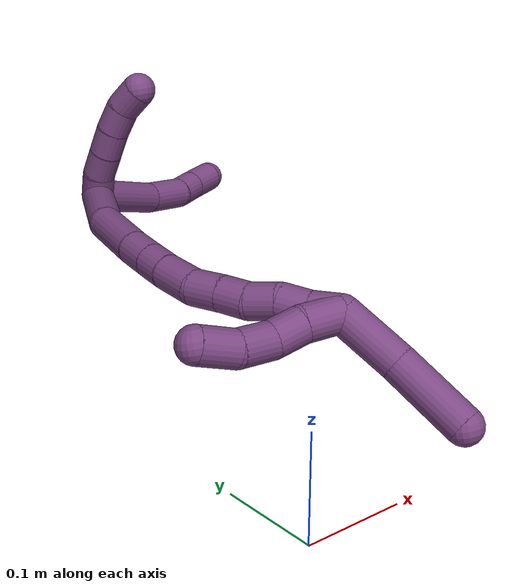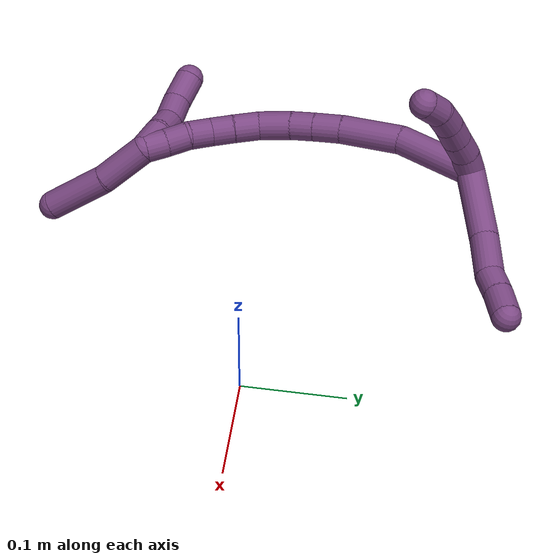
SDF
<sdf version="1.7">
 <world name="default">
  <model name="20">
   <static>0</static>
   <link name="20">
    <collision name="collision-cylinder-e_1_2_8">
     <pose>0.029649 0.01121 -0.006122 -2.07066 1.16403 -1.67422</pose>
     <geometry><cylinder><radius>0.0125</radius><length>0.064565</length></cylinder></geometry>
     <surface>
      <friction><ode><mu>1.16</mu><mu2>1.16</mu2><slip1>0</slip1><slip2>0</slip2></ode></friction>
      <contact><ode><kp>1e+06</kp><kd>1</kd><max_vel>0</max_vel><min_depth>0.001</min_depth></ode></contact>
     </surface>
    </collision>
    <visual name="visual-cylinder-e_1_2_8">
     <pose>0.029649 0.01121 -0.006122 -2.07066 1.16403 -1.67422</pose>
     <geometry><cylinder><radius>0.0125</radius><length>0.064565</length></cylinder></geometry>
     <material><ambient>0.478431 0.278431 0.509804 1</ambient></material>
    </visual>
    <collision name="collision-cylinder-e_2_8_9">
     <pose>0.077537 0.026969 -0.013356 -1.8106 1.31947 -1.55892</pose>
     <geometry><cylinder><radius>0.0125</radius><length>0.037663</length></cylinder></geometry>
     <surface>
      <friction><ode><mu>1.16</mu><mu2>1.16</mu2><slip1>0</slip1><slip2>0</slip2></ode></friction>
      <contact><ode><kp>1e+06</kp><kd>1</kd><max_vel>0</max_vel><min_depth>0.001</min_depth></ode></contact>
     </surface>
    </collision>
    <visual name="visual-cylinder-e_2_8_9">
     <pose>0.077537 0.026969 -0.013356 -1.8106 1.31947 -1.55892</pose>
     <geometry><cylinder><radius>0.0125</radius><length>0.037663</length></cylinder></geometry>
     <material><ambient>0.478431 0.278431 0.509804 1</ambient></material>
    </visual>
    <collision name="collision-cylinder-e_3_9_10">
     <pose>0.105566 0.035551 -0.012881 -1.19581 1.15398 -0.834515</pose>
     <geometry><cylinder><radius>0.0125</radius><length>0.021412</length></cylinder></geometry>
     <surface>
      <friction><ode><mu>1.16</mu><mu2>1.16</mu2><slip1>0</slip1><slip2>0</slip2></ode></friction>
      <contact><ode><kp>1e+06</kp><kd>1</kd><max_vel>0</max_vel><min_depth>0.001</min_depth></ode></contact>
     </surface>
    </collision>
    <visual name="visual-cylinder-e_3_9_10">
     <pose>0.105566 0.035551 -0.012881 -1.19581 1.15398 -0.834515</pose>
     <geometry><cylinder><radius>0.0125</radius><length>0.021412</length></cylinder></geometry>
     <material><ambient>0.478431 0.278431 0.509804 1</ambient></material>
    </visual>
    <collision name="collision-cylinder-e_4_10_6">
     <pose>0.127807 0.043403 -0.009271 -1.08375 1.23672 -0.809276</pose>
     <geometry><cylinder><radius>0.0125</radius><length>0.02636</length></cylinder></geometry>
     <surface>
      <friction><ode><mu>1.16</mu><mu2>1.16</mu2><slip1>0</slip1><slip2>0</slip2></ode></friction>
      <contact><ode><kp>1e+06</kp><kd>1</kd><max_vel>0</max_vel><min_depth>0.001</min_depth></ode></contact>
     </surface>
    </collision>
    <visual name="visual-cylinder-e_4_10_6">
     <pose>0.127807 0.043403 -0.009271 -1.08375 1.23672 -0.809276</pose>
     <geometry><cylinder><radius>0.0125</radius><length>0.02636</length></cylinder></geometry>
     <material><ambient>0.478431 0.278431 0.509804 1</ambient></material>
    </visual>
    <collision name="collision-cylinder-e_1_2_11">
     <pose>-0.000419 -0.00534 0.008445 0.563867 -0.041906 -0.01214</pose>
     <geometry><cylinder><radius>0.0125</radius><length>0.02</length></cylinder></geometry>
     <surface>
      <friction><ode><mu>1.16</mu><mu2>1.16</mu2><slip1>0</slip1><slip2>0</slip2></ode></friction>
      <contact><ode><kp>1e+06</kp><kd>1</kd><max_vel>0</max_vel><min_depth>0.001</min_depth></ode></contact>
     </surface>
    </collision>
    <visual name="visual-cylinder-e_1_2_11">
     <pose>-0.000419 -0.00534 0.008445 0.563867 -0.041906 -0.01214</pose>
     <geometry><cylinder><radius>0.0125</radius><length>0.02</length></cylinder></geometry>
     <material><ambient>0.478431 0.278431 0.509804 1</ambient></material>
    </visual>
    <collision name="collision-cylinder-e_2_11_12">
     <pose>0.000496 -0.016866 0.024632 0.67408 0.133804 0.046948</pose>
     <geometry><cylinder><radius>0.0125</radius><length>0.02</length></cylinder></geometry>
     <surface>
      <friction><ode><mu>1.16</mu><mu2>1.16</mu2><slip1>0</slip1><slip2>0</slip2></ode></friction>
      <contact><ode><kp>1e+06</kp><kd>1</kd><max_vel>0</max_vel><min_depth>0.001</min_depth></ode></contact>
     </surface>
    </collision>
    <visual name="visual-cylinder-e_2_11_12">
     <pose>0.000496 -0.016866 0.024632 0.67408 0.133804 0.046948</pose>
     <geometry><cylinder><radius>0.0125</radius><length>0.02</length></cylinder></geometry>
     <material><ambient>0.478431 0.278431 0.509804 1</ambient></material>
    </visual>
    <collision name="collision-cylinder-e_3_12_13">
     <pose>0.003519 -0.028912 0.0403 0.63678 0.169697 0.056053</pose>
     <geometry><cylinder><radius>0.0125</radius><length>0.02</length></cylinder></geometry>
     <surface>
      <friction><ode><mu>1.16</mu><mu2>1.16</mu2><slip1>0</slip1><slip2>0</slip2></ode></friction>
      <contact><ode><kp>1e+06</kp><kd>1</kd><max_vel>0</max_vel><min_depth>0.001</min_depth></ode></contact>
     </surface>
    </collision>
    <visual name="visual-cylinder-e_3_12_13">
     <pose>0.003519 -0.028912 0.0403 0.63678 0.169697 0.056053</pose>
     <geometry><cylinder><radius>0.0125</radius><length>0.02</length></cylinder></geometry>
     <material><ambient>0.478431 0.278431 0.509804 1</ambient></material>
    </visual>
    <collision name="collision-cylinder-e_4_13_14">
     <pose>0.007729 -0.04089 0.055723 0.684206 0.254822 0.091175</pose>
     <geometry><cylinder><radius>0.0125</radius><length>0.02</length></cylinder></geometry>
     <surface>
      <friction><ode><mu>1.16</mu><mu2>1.16</mu2><slip1>0</slip1><slip2>0</slip2></ode></friction>
      <contact><ode><kp>1e+06</kp><kd>1</kd><max_vel>0</max_vel><min_depth>0.001</min_depth></ode></contact>
     </surface>
    </collision>
    <visual name="visual-cylinder-e_4_13_14">
     <pose>0.007729 -0.04089 0.055723 0.684206 0.254822 0.091175</pose>
     <geometry><cylinder><radius>0.0125</radius><length>0.02</length></cylinder></geometry>
     <material><ambient>0.478431 0.278431 0.509804 1</ambient></material>
    </visual>
    <collision name="collision-cylinder-e_5_14_5">
     <pose>0.013818 -0.054665 0.068572 0.961098 0.364873 0.19176</pose>
     <geometry><cylinder><radius>0.0125</radius><length>0.02</length></cylinder></geometry>
     <surface>
      <friction><ode><mu>1.16</mu><mu2>1.16</mu2><slip1>0</slip1><slip2>0</slip2></ode></friction>
      <contact><ode><kp>1e+06</kp><kd>1</kd><max_vel>0</max_vel><min_depth>0.001</min_depth></ode></contact>
     </surface>
    </collision>
    <visual name="visual-cylinder-e_5_14_5">
     <pose>0.013818 -0.054665 0.068572 0.961098 0.364873 0.19176</pose>
     <geometry><cylinder><radius>0.0125</radius><length>0.02</length></cylinder></geometry>
     <material><ambient>0.478431 0.278431 0.509804 1</ambient></material>
    </visual>
    <collision name="collision-cylinder-e_1_2_15">
     <pose>-0.01511 -0.029922 -0.008641 1.85194 -0.451703 -0.593023</pose>
     <geometry><cylinder><radius>0.0125</radius><length>0.069234</length></cylinder></geometry>
     <surface>
      <friction><ode><mu>1.16</mu><mu2>1.16</mu2><slip1>0</slip1><slip2>0</slip2></ode></friction>
      <contact><ode><kp>1e+06</kp><kd>1</kd><max_vel>0</max_vel><min_depth>0.001</min_depth></ode></contact>
     </surface>
    </collision>
    <visual name="visual-cylinder-e_1_2_15">
     <pose>-0.01511 -0.029922 -0.008641 1.85194 -0.451703 -0.593023</pose>
     <geometry><cylinder><radius>0.0125</radius><length>0.069234</length></cylinder></geometry>
     <material><ambient>0.478431 0.278431 0.509804 1</ambient></material>
    </visual>
    <collision name="collision-cylinder-e_2_15_16">
     <pose>-0.034672 -0.084764 -0.025783 1.89953 -0.167476 -0.23356</pose>
     <geometry><cylinder><radius>0.0125</radius><length>0.053407</length></cylinder></geometry>
     <surface>
      <friction><ode><mu>1.16</mu><mu2>1.16</mu2><slip1>0</slip1><slip2>0</slip2></ode></friction>
      <contact><ode><kp>1e+06</kp><kd>1</kd><max_vel>0</max_vel><min_depth>0.001</min_depth></ode></contact>
     </surface>
    </collision>
    <visual name="visual-cylinder-e_2_15_16">
     <pose>-0.034672 -0.084764 -0.025783 1.89953 -0.167476 -0.23356</pose>
     <geometry><cylinder><radius>0.0125</radius><length>0.053407</length></cylinder></geometry>
     <material><ambient>0.478431 0.278431 0.509804 1</ambient></material>
    </visual>
    <collision name="collision-cylinder-e_3_16_17">
     <pose>-0.040003 -0.121099 -0.038556 1.92899 -0.072102 -0.10393</pose>
     <geometry><cylinder><radius>0.0125</radius><length>0.02444</length></cylinder></geometry>
     <surface>
      <friction><ode><mu>1.16</mu><mu2>1.16</mu2><slip1>0</slip1><slip2>0</slip2></ode></friction>
      <contact><ode><kp>1e+06</kp><kd>1</kd><max_vel>0</max_vel><min_depth>0.001</min_depth></ode></contact>
     </surface>
    </collision>
    <visual name="visual-cylinder-e_3_16_17">
     <pose>-0.040003 -0.121099 -0.038556 1.92899 -0.072102 -0.10393</pose>
     <geometry><cylinder><radius>0.0125</radius><length>0.02444</length></cylinder></geometry>
     <material><ambient>0.478431 0.278431 0.509804 1</ambient></material>
    </visual>
    <collision name="collision-cylinder-e_4_17_18">
     <pose>-0.041347 -0.142066 -0.046447 1.93277 -0.04537 -0.065681</pose>
     <geometry><cylinder><radius>0.0125</radius><length>0.020451</length></cylinder></geometry>
     <surface>
      <friction><ode><mu>1.16</mu><mu2>1.16</mu2><slip1>0</slip1><slip2>0</slip2></ode></friction>
      <contact><ode><kp>1e+06</kp><kd>1</kd><max_vel>0</max_vel><min_depth>0.001</min_depth></ode></contact>
     </surface>
    </collision>
    <visual name="visual-cylinder-e_4_17_18">
     <pose>-0.041347 -0.142066 -0.046447 1.93277 -0.04537 -0.065681</pose>
     <geometry><cylinder><radius>0.0125</radius><length>0.020451</length></cylinder></geometry>
     <material><ambient>0.478431 0.278431 0.509804 1</ambient></material>
    </visual>
    <collision name="collision-cylinder-e_5_18_19">
     <pose>-0.041026 -0.164802 -0.0551 1.93568 0.055613 0.080752</pose>
     <geometry><cylinder><radius>0.0125</radius><length>0.028268</length></cylinder></geometry>
     <surface>
      <friction><ode><mu>1.16</mu><mu2>1.16</mu2><slip1>0</slip1><slip2>0</slip2></ode></friction>
      <contact><ode><kp>1e+06</kp><kd>1</kd><max_vel>0</max_vel><min_depth>0.001</min_depth></ode></contact>
     </surface>
    </collision>
    <visual name="visual-cylinder-e_5_18_19">
     <pose>-0.041026 -0.164802 -0.0551 1.93568 0.055613 0.080752</pose>
     <geometry><cylinder><radius>0.0125</radius><length>0.028268</length></cylinder></geometry>
     <material><ambient>0.478431 0.278431 0.509804 1</ambient></material>
    </visual>
    <collision name="collision-cylinder-e_6_19_20">
     <pose>-0.036496 -0.188366 -0.06286 1.82752 0.335652 0.432404</pose>
     <geometry><cylinder><radius>0.0125</radius><length>0.022732</length></cylinder></geometry>
     <surface>
      <friction><ode><mu>1.16</mu><mu2>1.16</mu2><slip1>0</slip1><slip2>0</slip2></ode></friction>
      <contact><ode><kp>1e+06</kp><kd>1</kd><max_vel>0</max_vel><min_depth>0.001</min_depth></ode></contact>
     </surface>
    </collision>
    <visual name="visual-cylinder-e_6_19_20">
     <pose>-0.036496 -0.188366 -0.06286 1.82752 0.335652 0.432404</pose>
     <geometry><cylinder><radius>0.0125</radius><length>0.022732</length></cylinder></geometry>
     <material><ambient>0.478431 0.278431 0.509804 1</ambient></material>
    </visual>
    <collision name="collision-cylinder-e_7_20_21">
     <pose>-0.029633 -0.207944 -0.068465 1.87416 0.312965 0.422996</pose>
     <geometry><cylinder><radius>0.0125</radius><length>0.020261</length></cylinder></geometry>
     <surface>
      <friction><ode><mu>1.16</mu><mu2>1.16</mu2><slip1>0</slip1><slip2>0</slip2></ode></friction>
      <contact><ode><kp>1e+06</kp><kd>1</kd><max_vel>0</max_vel><min_depth>0.001</min_depth></ode></contact>
     </surface>
    </collision>
    <visual name="visual-cylinder-e_7_20_21">
     <pose>-0.029633 -0.207944 -0.068465 1.87416 0.312965 0.422996</pose>
     <geometry><cylinder><radius>0.0125</radius><length>0.020261</length></cylinder></geometry>
     <material><ambient>0.478431 0.278431 0.509804 1</ambient></material>
    </visual>
    <collision name="collision-cylinder-e_8_21_22">
     <pose>-0.021337 -0.226159 -0.072278 1.674 0.518929 0.572548</pose>
     <geometry><cylinder><radius>0.0125</radius><length>0.02088</length></cylinder></geometry>
     <surface>
      <friction><ode><mu>1.16</mu><mu2>1.16</mu2><slip1>0</slip1><slip2>0</slip2></ode></friction>
      <contact><ode><kp>1e+06</kp><kd>1</kd><max_vel>0</max_vel><min_depth>0.001</min_depth></ode></contact>
     </surface>
    </collision>
    <visual name="visual-cylinder-e_8_21_22">
     <pose>-0.021337 -0.226159 -0.072278 1.674 0.518929 0.572548</pose>
     <geometry><cylinder><radius>0.0125</radius><length>0.02088</length></cylinder></geometry>
     <material><ambient>0.478431 0.278431 0.509804 1</ambient></material>
    </visual>
    <collision name="collision-cylinder-e_9_22_23">
     <pose>-0.011564 -0.243442 -0.076727 1.97288 0.472859 0.698667</pose>
     <geometry><cylinder><radius>0.0125</radius><length>0.020178</length></cylinder></geometry>
     <surface>
      <friction><ode><mu>1.16</mu><mu2>1.16</mu2><slip1>0</slip1><slip2>0</slip2></ode></friction>
      <contact><ode><kp>1e+06</kp><kd>1</kd><max_vel>0</max_vel><min_depth>0.001</min_depth></ode></contact>
     </surface>
    </collision>
    <visual name="visual-cylinder-e_9_22_23">
     <pose>-0.011564 -0.243442 -0.076727 1.97288 0.472859 0.698667</pose>
     <geometry><cylinder><radius>0.0125</radius><length>0.020178</length></cylinder></geometry>
     <material><ambient>0.478431 0.278431 0.509804 1</ambient></material>
    </visual>
    <collision name="collision-cylinder-e_10_23_1">
     <pose>-0.001685 -0.260035 -0.082301 1.81323 0.552162 0.694499</pose>
     <geometry><cylinder><radius>0.0125</radius><length>0.020149</length></cylinder></geometry>
     <surface>
      <friction><ode><mu>1.16</mu><mu2>1.16</mu2><slip1>0</slip1><slip2>0</slip2></ode></friction>
      <contact><ode><kp>1e+06</kp><kd>1</kd><max_vel>0</max_vel><min_depth>0.001</min_depth></ode></contact>
     </surface>
    </collision>
    <visual name="visual-cylinder-e_10_23_1">
     <pose>-0.001685 -0.260035 -0.082301 1.81323 0.552162 0.694499</pose>
     <geometry><cylinder><radius>0.0125</radius><length>0.020149</length></cylinder></geometry>
     <material><ambient>0.478431 0.278431 0.509804 1</ambient></material>
    </visual>
    <collision name="collision-cylinder-e_1_1_24">
     <pose>-0.00899 -0.264416 -0.084675 -1.6504 -1.26617 1.34303</pose>
     <geometry><cylinder><radius>0.0125</radius><length>0.026395</length></cylinder></geometry>
     <surface>
      <friction><ode><mu>1.16</mu><mu2>1.16</mu2><slip1>0</slip1><slip2>0</slip2></ode></friction>
      <contact><ode><kp>1e+06</kp><kd>1</kd><max_vel>0</max_vel><min_depth>0.001</min_depth></ode></contact>
     </surface>
    </collision>
    <visual name="visual-cylinder-e_1_1_24">
     <pose>-0.00899 -0.264416 -0.084675 -1.6504 -1.26617 1.34303</pose>
     <geometry><cylinder><radius>0.0125</radius><length>0.026395</length></cylinder></geometry>
     <material><ambient>0.478431 0.278431 0.509804 1</ambient></material>
    </visual>
    <collision name="collision-cylinder-e_2_24_25">
     <pose>-0.031989 -0.257624 -0.087393 -2.27202 -1.22717 1.97562</pose>
     <geometry><cylinder><radius>0.0125</radius><length>0.02211</length></cylinder></geometry>
     <surface>
      <friction><ode><mu>1.16</mu><mu2>1.16</mu2><slip1>0</slip1><slip2>0</slip2></ode></friction>
      <contact><ode><kp>1e+06</kp><kd>1</kd><max_vel>0</max_vel><min_depth>0.001</min_depth></ode></contact>
     </surface>
    </collision>
    <visual name="visual-cylinder-e_2_24_25">
     <pose>-0.031989 -0.257624 -0.087393 -2.27202 -1.22717 1.97562</pose>
     <geometry><cylinder><radius>0.0125</radius><length>0.02211</length></cylinder></geometry>
     <material><ambient>0.478431 0.278431 0.509804 1</ambient></material>
    </visual>
    <collision name="collision-cylinder-e_3_25_26">
     <pose>-0.054789 -0.253717 -0.08923 -1.08133 -1.47399 0.997779</pose>
     <geometry><cylinder><radius>0.0125</radius><length>0.024899</length></cylinder></geometry>
     <surface>
      <friction><ode><mu>1.16</mu><mu2>1.16</mu2><slip1>0</slip1><slip2>0</slip2></ode></friction>
      <contact><ode><kp>1e+06</kp><kd>1</kd><max_vel>0</max_vel><min_depth>0.001</min_depth></ode></contact>
     </surface>
    </collision>
    <visual name="visual-cylinder-e_3_25_26">
     <pose>-0.054789 -0.253717 -0.08923 -1.08133 -1.47399 0.997779</pose>
     <geometry><cylinder><radius>0.0125</radius><length>0.024899</length></cylinder></geometry>
     <material><ambient>0.478431 0.278431 0.509804 1</ambient></material>
    </visual>
    <collision name="collision-cylinder-e_4_26_4">
     <pose>-0.079477 -0.250159 -0.084262 -0.515828 -1.18043 0.349795</pose>
     <geometry><cylinder><radius>0.0125</radius><length>0.026596</length></cylinder></geometry>
     <surface>
      <friction><ode><mu>1.16</mu><mu2>1.16</mu2><slip1>0</slip1><slip2>0</slip2></ode></friction>
      <contact><ode><kp>1e+06</kp><kd>1</kd><max_vel>0</max_vel><min_depth>0.001</min_depth></ode></contact>
     </surface>
    </collision>
    <visual name="visual-cylinder-e_4_26_4">
     <pose>-0.079477 -0.250159 -0.084262 -0.515828 -1.18043 0.349795</pose>
     <geometry><cylinder><radius>0.0125</radius><length>0.026596</length></cylinder></geometry>
     <material><ambient>0.478431 0.278431 0.509804 1</ambient></material>
    </visual>
    <collision name="collision-cylinder-e_1_1_27">
     <pose>0.011629 -0.281131 -0.101166 2.49187 0.363491 0.998997</pose>
     <geometry><cylinder><radius>0.0125</radius><length>0.045164</length></cylinder></geometry>
     <surface>
      <friction><ode><mu>1.16</mu><mu2>1.16</mu2><slip1>0</slip1><slip2>0</slip2></ode></friction>
      <contact><ode><kp>1e+06</kp><kd>1</kd><max_vel>0</max_vel><min_depth>0.001</min_depth></ode></contact>
     </surface>
    </collision>
    <visual name="visual-cylinder-e_1_1_27">
     <pose>0.011629 -0.281131 -0.101166 2.49187 0.363491 0.998997</pose>
     <geometry><cylinder><radius>0.0125</radius><length>0.045164</length></cylinder></geometry>
     <material><ambient>0.478431 0.278431 0.509804 1</ambient></material>
    </visual>
    <collision name="collision-cylinder-e_2_27_3">
     <pose>0.025194 -0.312255 -0.137572 2.38897 0.203342 0.505347</pose>
     <geometry><cylinder><radius>0.0125</radius><length>0.054836</length></cylinder></geometry>
     <surface>
      <friction><ode><mu>1.16</mu><mu2>1.16</mu2><slip1>0</slip1><slip2>0</slip2></ode></friction>
      <contact><ode><kp>1e+06</kp><kd>1</kd><max_vel>0</max_vel><min_depth>0.001</min_depth></ode></contact>
     </surface>
    </collision>
    <visual name="visual-cylinder-e_2_27_3">
     <pose>0.025194 -0.312255 -0.137572 2.38897 0.203342 0.505347</pose>
     <geometry><cylinder><radius>0.0125</radius><length>0.054836</length></cylinder></geometry>
     <material><ambient>0.478431 0.278431 0.509804 1</ambient></material>
    </visual>
    <collision name="collision-sphere-3">
     <pose>0.030731 -0.330611 -0.157172 0 -0 0</pose>
     <geometry><sphere><radius>0.0125</radius></sphere></geometry>
     <surface>
      <friction><ode><mu>1.16</mu><mu2>1.16</mu2><slip1>0</slip1><slip2>0</slip2></ode></friction>
      <contact><ode><kp>1e+06</kp><kd>1</kd><max_vel>0</max_vel><min_depth>0.001</min_depth></ode></contact>
     </surface>
    </collision>
    <visual name="visual-sphere-3">
     <pose>0.030731 -0.330611 -0.157172 0 -0 0</pose>
     <geometry><sphere><radius>0.0125</radius></sphere></geometry>
     <material><ambient>0.478431 0.278431 0.509804 1</ambient></material>
    </visual>
    <collision name="collision-sphere-27">
     <pose>0.019657 -0.293899 -0.117973 0 -0 0</pose>
     <geometry><sphere><radius>0.0125</radius></sphere></geometry>
     <surface>
      <friction><ode><mu>1.16</mu><mu2>1.16</mu2><slip1>0</slip1><slip2>0</slip2></ode></friction>
      <contact><ode><kp>1e+06</kp><kd>1</kd><max_vel>0</max_vel><min_depth>0.001</min_depth></ode></contact>
     </surface>
    </collision>
    <visual name="visual-sphere-27">
     <pose>0.019657 -0.293899 -0.117973 0 -0 0</pose>
     <geometry><sphere><radius>0.0125</radius></sphere></geometry>
     <material><ambient>0.478431 0.278431 0.509804 1</ambient></material>
    </visual>
    <collision name="collision-sphere-4">
     <pose>-0.091775 -0.247663 -0.07986 0 -0 0</pose>
     <geometry><sphere><radius>0.0125</radius></sphere></geometry>
     <surface>
      <friction><ode><mu>1.16</mu><mu2>1.16</mu2><slip1>0</slip1><slip2>0</slip2></ode></friction>
      <contact><ode><kp>1e+06</kp><kd>1</kd><max_vel>0</max_vel><min_depth>0.001</min_depth></ode></contact>
     </surface>
    </collision>
    <visual name="visual-sphere-4">
     <pose>-0.091775 -0.247663 -0.07986 0 -0 0</pose>
     <geometry><sphere><radius>0.0125</radius></sphere></geometry>
     <material><ambient>0.478431 0.278431 0.509804 1</ambient></material>
    </visual>
    <collision name="collision-sphere-26">
     <pose>-0.06718 -0.252655 -0.088664 0 -0 0</pose>
     <geometry><sphere><radius>0.0125</radius></sphere></geometry>
     <surface>
      <friction><ode><mu>1.16</mu><mu2>1.16</mu2><slip1>0</slip1><slip2>0</slip2></ode></friction>
      <contact><ode><kp>1e+06</kp><kd>1</kd><max_vel>0</max_vel><min_depth>0.001</min_depth></ode></contact>
     </surface>
    </collision>
    <visual name="visual-sphere-26">
     <pose>-0.06718 -0.252655 -0.088664 0 -0 0</pose>
     <geometry><sphere><radius>0.0125</radius></sphere></geometry>
     <material><ambient>0.478431 0.278431 0.509804 1</ambient></material>
    </visual>
    <collision name="collision-sphere-25">
     <pose>-0.042398 -0.254779 -0.089795 0 -0 0</pose>
     <geometry><sphere><radius>0.0125</radius></sphere></geometry>
     <surface>
      <friction><ode><mu>1.16</mu><mu2>1.16</mu2><slip1>0</slip1><slip2>0</slip2></ode></friction>
      <contact><ode><kp>1e+06</kp><kd>1</kd><max_vel>0</max_vel><min_depth>0.001</min_depth></ode></contact>
     </surface>
    </collision>
    <visual name="visual-sphere-25">
     <pose>-0.042398 -0.254779 -0.089795 0 -0 0</pose>
     <geometry><sphere><radius>0.0125</radius></sphere></geometry>
     <material><ambient>0.478431 0.278431 0.509804 1</ambient></material>
    </visual>
    <collision name="collision-sphere-24">
     <pose>-0.02158 -0.26047 -0.08499 0 -0 0</pose>
     <geometry><sphere><radius>0.0125</radius></sphere></geometry>
     <surface>
      <friction><ode><mu>1.16</mu><mu2>1.16</mu2><slip1>0</slip1><slip2>0</slip2></ode></friction>
      <contact><ode><kp>1e+06</kp><kd>1</kd><max_vel>0</max_vel><min_depth>0.001</min_depth></ode></contact>
     </surface>
    </collision>
    <visual name="visual-sphere-24">
     <pose>-0.02158 -0.26047 -0.08499 0 -0 0</pose>
     <geometry><sphere><radius>0.0125</radius></sphere></geometry>
     <material><ambient>0.478431 0.278431 0.509804 1</ambient></material>
    </visual>
    <collision name="collision-sphere-1">
     <pose>0.0036 -0.268362 -0.08436 0 -0 0</pose>
     <geometry><sphere><radius>0.0125</radius></sphere></geometry>
     <surface>
      <friction><ode><mu>1.16</mu><mu2>1.16</mu2><slip1>0</slip1><slip2>0</slip2></ode></friction>
      <contact><ode><kp>1e+06</kp><kd>1</kd><max_vel>0</max_vel><min_depth>0.001</min_depth></ode></contact>
     </surface>
    </collision>
    <visual name="visual-sphere-1">
     <pose>0.0036 -0.268362 -0.08436 0 -0 0</pose>
     <geometry><sphere><radius>0.0125</radius></sphere></geometry>
     <material><ambient>0.478431 0.278431 0.509804 1</ambient></material>
    </visual>
    <collision name="collision-sphere-23">
     <pose>-0.006969 -0.251708 -0.080242 0 -0 0</pose>
     <geometry><sphere><radius>0.0125</radius></sphere></geometry>
     <surface>
      <friction><ode><mu>1.16</mu><mu2>1.16</mu2><slip1>0</slip1><slip2>0</slip2></ode></friction>
      <contact><ode><kp>1e+06</kp><kd>1</kd><max_vel>0</max_vel><min_depth>0.001</min_depth></ode></contact>
     </surface>
    </collision>
    <visual name="visual-sphere-23">
     <pose>-0.006969 -0.251708 -0.080242 0 -0 0</pose>
     <geometry><sphere><radius>0.0125</radius></sphere></geometry>
     <material><ambient>0.478431 0.278431 0.509804 1</ambient></material>
    </visual>
    <collision name="collision-sphere-22">
     <pose>-0.016159 -0.235177 -0.073212 0 -0 0</pose>
     <geometry><sphere><radius>0.0125</radius></sphere></geometry>
     <surface>
      <friction><ode><mu>1.16</mu><mu2>1.16</mu2><slip1>0</slip1><slip2>0</slip2></ode></friction>
      <contact><ode><kp>1e+06</kp><kd>1</kd><max_vel>0</max_vel><min_depth>0.001</min_depth></ode></contact>
     </surface>
    </collision>
    <visual name="visual-sphere-22">
     <pose>-0.016159 -0.235177 -0.073212 0 -0 0</pose>
     <geometry><sphere><radius>0.0125</radius></sphere></geometry>
     <material><ambient>0.478431 0.278431 0.509804 1</ambient></material>
    </visual>
    <collision name="collision-sphere-21">
     <pose>-0.026514 -0.217142 -0.071344 0 -0 0</pose>
     <geometry><sphere><radius>0.0125</radius></sphere></geometry>
     <surface>
      <friction><ode><mu>1.16</mu><mu2>1.16</mu2><slip1>0</slip1><slip2>0</slip2></ode></friction>
      <contact><ode><kp>1e+06</kp><kd>1</kd><max_vel>0</max_vel><min_depth>0.001</min_depth></ode></contact>
     </surface>
    </collision>
    <visual name="visual-sphere-21">
     <pose>-0.026514 -0.217142 -0.071344 0 -0 0</pose>
     <geometry><sphere><radius>0.0125</radius></sphere></geometry>
     <material><ambient>0.478431 0.278431 0.509804 1</ambient></material>
    </visual>
    <collision name="collision-sphere-11">
     <pose>-0.000838 -0.01068 0.016889 0 -0 0</pose>
     <geometry><sphere><radius>0.0125</radius></sphere></geometry>
     <surface>
      <friction><ode><mu>1.16</mu><mu2>1.16</mu2><slip1>0</slip1><slip2>0</slip2></ode></friction>
      <contact><ode><kp>1e+06</kp><kd>1</kd><max_vel>0</max_vel><min_depth>0.001</min_depth></ode></contact>
     </surface>
    </collision>
    <visual name="visual-sphere-11">
     <pose>-0.000838 -0.01068 0.016889 0 -0 0</pose>
     <geometry><sphere><radius>0.0125</radius></sphere></geometry>
     <material><ambient>0.478431 0.278431 0.509804 1</ambient></material>
    </visual>
    <collision name="collision-sphere-6">
     <pose>0.140258 0.047222 -0.007248 0 -0 0</pose>
     <geometry><sphere><radius>0.0125</radius></sphere></geometry>
     <surface>
      <friction><ode><mu>1.16</mu><mu2>1.16</mu2><slip1>0</slip1><slip2>0</slip2></ode></friction>
      <contact><ode><kp>1e+06</kp><kd>1</kd><max_vel>0</max_vel><min_depth>0.001</min_depth></ode></contact>
     </surface>
    </collision>
    <visual name="visual-sphere-6">
     <pose>0.140258 0.047222 -0.007248 0 -0 0</pose>
     <geometry><sphere><radius>0.0125</radius></sphere></geometry>
     <material><ambient>0.478431 0.278431 0.509804 1</ambient></material>
    </visual>
    <collision name="collision-sphere-10">
     <pose>0.115355 0.039584 -0.011294 0 -0 0</pose>
     <geometry><sphere><radius>0.0125</radius></sphere></geometry>
     <surface>
      <friction><ode><mu>1.16</mu><mu2>1.16</mu2><slip1>0</slip1><slip2>0</slip2></ode></friction>
      <contact><ode><kp>1e+06</kp><kd>1</kd><max_vel>0</max_vel><min_depth>0.001</min_depth></ode></contact>
     </surface>
    </collision>
    <visual name="visual-sphere-10">
     <pose>0.115355 0.039584 -0.011294 0 -0 0</pose>
     <geometry><sphere><radius>0.0125</radius></sphere></geometry>
     <material><ambient>0.478431 0.278431 0.509804 1</ambient></material>
    </visual>
    <collision name="collision-sphere-9">
     <pose>0.095777 0.031518 -0.014468 0 -0 0</pose>
     <geometry><sphere><radius>0.0125</radius></sphere></geometry>
     <surface>
      <friction><ode><mu>1.16</mu><mu2>1.16</mu2><slip1>0</slip1><slip2>0</slip2></ode></friction>
      <contact><ode><kp>1e+06</kp><kd>1</kd><max_vel>0</max_vel><min_depth>0.001</min_depth></ode></contact>
     </surface>
    </collision>
    <visual name="visual-sphere-9">
     <pose>0.095777 0.031518 -0.014468 0 -0 0</pose>
     <geometry><sphere><radius>0.0125</radius></sphere></geometry>
     <material><ambient>0.478431 0.278431 0.509804 1</ambient></material>
    </visual>
    <collision name="collision-sphere-2">
     <geometry><sphere><radius>0.0125</radius></sphere></geometry>
     <surface>
      <friction><ode><mu>1.16</mu><mu2>1.16</mu2><slip1>0</slip1><slip2>0</slip2></ode></friction>
      <contact><ode><kp>1e+06</kp><kd>1</kd><max_vel>0</max_vel><min_depth>0.001</min_depth></ode></contact>
     </surface>
    </collision>
    <visual name="visual-sphere-2">
     <geometry><sphere><radius>0.0125</radius></sphere></geometry>
     <material><ambient>0.478431 0.278431 0.509804 1</ambient></material>
    </visual>
    <collision name="collision-sphere-19">
     <pose>-0.04024 -0.177985 -0.060136 0 -0 0</pose>
     <geometry><sphere><radius>0.0125</radius></sphere></geometry>
     <surface>
      <friction><ode><mu>1.16</mu><mu2>1.16</mu2><slip1>0</slip1><slip2>0</slip2></ode></friction>
      <contact><ode><kp>1e+06</kp><kd>1</kd><max_vel>0</max_vel><min_depth>0.001</min_depth></ode></contact>
     </surface>
    </collision>
    <visual name="visual-sphere-19">
     <pose>-0.04024 -0.177985 -0.060136 0 -0 0</pose>
     <geometry><sphere><radius>0.0125</radius></sphere></geometry>
     <material><ambient>0.478431 0.278431 0.509804 1</ambient></material>
    </visual>
    <collision name="collision-sphere-8">
     <pose>0.059297 0.02242 -0.012244 0 -0 0</pose>
     <geometry><sphere><radius>0.0125</radius></sphere></geometry>
     <surface>
      <friction><ode><mu>1.16</mu><mu2>1.16</mu2><slip1>0</slip1><slip2>0</slip2></ode></friction>
      <contact><ode><kp>1e+06</kp><kd>1</kd><max_vel>0</max_vel><min_depth>0.001</min_depth></ode></contact>
     </surface>
    </collision>
    <visual name="visual-sphere-8">
     <pose>0.059297 0.02242 -0.012244 0 -0 0</pose>
     <geometry><sphere><radius>0.0125</radius></sphere></geometry>
     <material><ambient>0.478431 0.278431 0.509804 1</ambient></material>
    </visual>
    <collision name="collision-sphere-12">
     <pose>0.00183 -0.023052 0.032375 0 -0 0</pose>
     <geometry><sphere><radius>0.0125</radius></sphere></geometry>
     <surface>
      <friction><ode><mu>1.16</mu><mu2>1.16</mu2><slip1>0</slip1><slip2>0</slip2></ode></friction>
      <contact><ode><kp>1e+06</kp><kd>1</kd><max_vel>0</max_vel><min_depth>0.001</min_depth></ode></contact>
     </surface>
    </collision>
    <visual name="visual-sphere-12">
     <pose>0.00183 -0.023052 0.032375 0 -0 0</pose>
     <geometry><sphere><radius>0.0125</radius></sphere></geometry>
     <material><ambient>0.478431 0.278431 0.509804 1</ambient></material>
    </visual>
    <collision name="collision-sphere-13">
     <pose>0.005208 -0.034773 0.048224 0 -0 0</pose>
     <geometry><sphere><radius>0.0125</radius></sphere></geometry>
     <surface>
      <friction><ode><mu>1.16</mu><mu2>1.16</mu2><slip1>0</slip1><slip2>0</slip2></ode></friction>
      <contact><ode><kp>1e+06</kp><kd>1</kd><max_vel>0</max_vel><min_depth>0.001</min_depth></ode></contact>
     </surface>
    </collision>
    <visual name="visual-sphere-13">
     <pose>0.005208 -0.034773 0.048224 0 -0 0</pose>
     <geometry><sphere><radius>0.0125</radius></sphere></geometry>
     <material><ambient>0.478431 0.278431 0.509804 1</ambient></material>
    </visual>
    <collision name="collision-sphere-14">
     <pose>0.010249 -0.047006 0.063222 0 -0 0</pose>
     <geometry><sphere><radius>0.0125</radius></sphere></geometry>
     <surface>
      <friction><ode><mu>1.16</mu><mu2>1.16</mu2><slip1>0</slip1><slip2>0</slip2></ode></friction>
      <contact><ode><kp>1e+06</kp><kd>1</kd><max_vel>0</max_vel><min_depth>0.001</min_depth></ode></contact>
     </surface>
    </collision>
    <visual name="visual-sphere-14">
     <pose>0.010249 -0.047006 0.063222 0 -0 0</pose>
     <geometry><sphere><radius>0.0125</radius></sphere></geometry>
     <material><ambient>0.478431 0.278431 0.509804 1</ambient></material>
    </visual>
    <collision name="collision-sphere-5">
     <pose>0.017386 -0.062323 0.073921 0 -0 0</pose>
     <geometry><sphere><radius>0.0125</radius></sphere></geometry>
     <surface>
      <friction><ode><mu>1.16</mu><mu2>1.16</mu2><slip1>0</slip1><slip2>0</slip2></ode></friction>
      <contact><ode><kp>1e+06</kp><kd>1</kd><max_vel>0</max_vel><min_depth>0.001</min_depth></ode></contact>
     </surface>
    </collision>
    <visual name="visual-sphere-5">
     <pose>0.017386 -0.062323 0.073921 0 -0 0</pose>
     <geometry><sphere><radius>0.0125</radius></sphere></geometry>
     <material><ambient>0.478431 0.278431 0.509804 1</ambient></material>
    </visual>
    <collision name="collision-sphere-15">
     <pose>-0.03022 -0.059844 -0.017283 0 -0 0</pose>
     <geometry><sphere><radius>0.0125</radius></sphere></geometry>
     <surface>
      <friction><ode><mu>1.16</mu><mu2>1.16</mu2><slip1>0</slip1><slip2>0</slip2></ode></friction>
      <contact><ode><kp>1e+06</kp><kd>1</kd><max_vel>0</max_vel><min_depth>0.001</min_depth></ode></contact>
     </surface>
    </collision>
    <visual name="visual-sphere-15">
     <pose>-0.03022 -0.059844 -0.017283 0 -0 0</pose>
     <geometry><sphere><radius>0.0125</radius></sphere></geometry>
     <material><ambient>0.478431 0.278431 0.509804 1</ambient></material>
    </visual>
    <collision name="collision-sphere-16">
     <pose>-0.039123 -0.109684 -0.034283 0 -0 0</pose>
     <geometry><sphere><radius>0.0125</radius></sphere></geometry>
     <surface>
      <friction><ode><mu>1.16</mu><mu2>1.16</mu2><slip1>0</slip1><slip2>0</slip2></ode></friction>
      <contact><ode><kp>1e+06</kp><kd>1</kd><max_vel>0</max_vel><min_depth>0.001</min_depth></ode></contact>
     </surface>
    </collision>
    <visual name="visual-sphere-16">
     <pose>-0.039123 -0.109684 -0.034283 0 -0 0</pose>
     <geometry><sphere><radius>0.0125</radius></sphere></geometry>
     <material><ambient>0.478431 0.278431 0.509804 1</ambient></material>
    </visual>
    <collision name="collision-sphere-17">
     <pose>-0.040884 -0.132513 -0.042829 0 -0 0</pose>
     <geometry><sphere><radius>0.0125</radius></sphere></geometry>
     <surface>
      <friction><ode><mu>1.16</mu><mu2>1.16</mu2><slip1>0</slip1><slip2>0</slip2></ode></friction>
      <contact><ode><kp>1e+06</kp><kd>1</kd><max_vel>0</max_vel><min_depth>0.001</min_depth></ode></contact>
     </surface>
    </collision>
    <visual name="visual-sphere-17">
     <pose>-0.040884 -0.132513 -0.042829 0 -0 0</pose>
     <geometry><sphere><radius>0.0125</radius></sphere></geometry>
     <material><ambient>0.478431 0.278431 0.509804 1</ambient></material>
    </visual>
    <collision name="collision-sphere-18">
     <pose>-0.041811 -0.151619 -0.050064 0 -0 0</pose>
     <geometry><sphere><radius>0.0125</radius></sphere></geometry>
     <surface>
      <friction><ode><mu>1.16</mu><mu2>1.16</mu2><slip1>0</slip1><slip2>0</slip2></ode></friction>
      <contact><ode><kp>1e+06</kp><kd>1</kd><max_vel>0</max_vel><min_depth>0.001</min_depth></ode></contact>
     </surface>
    </collision>
    <visual name="visual-sphere-18">
     <pose>-0.041811 -0.151619 -0.050064 0 -0 0</pose>
     <geometry><sphere><radius>0.0125</radius></sphere></geometry>
     <material><ambient>0.478431 0.278431 0.509804 1</ambient></material>
    </visual>
    <collision name="collision-sphere-20">
     <pose>-0.032752 -0.198746 -0.065585 0 -0 0</pose>
     <geometry><sphere><radius>0.0125</radius></sphere></geometry>
     <surface>
      <friction><ode><mu>1.16</mu><mu2>1.16</mu2><slip1>0</slip1><slip2>0</slip2></ode></friction>
      <contact><ode><kp>1e+06</kp><kd>1</kd><max_vel>0</max_vel><min_depth>0.001</min_depth></ode></contact>
     </surface>
    </collision>
    <visual name="visual-sphere-20">
     <pose>-0.032752 -0.198746 -0.065585 0 -0 0</pose>
     <geometry><sphere><radius>0.0125</radius></sphere></geometry>
     <material><ambient>0.478431 0.278431 0.509804 1</ambient></material>
    </visual>
    <inertial>
     <pose>0.00057 -0.126994 -0.041553 0 -0 0</pose>
     <mass>0.75</mass>
     <inertia><ixx>7.3e-05</ixx><ixy>0</ixy><ixz>0</ixz><iyy>-8e-06</iyy><iyz>0</iyz><izz>3.4e-05</izz></inertia>
    </inertial>
   </link>
   <pose>-0.062489 0.189621 0.254218 -0.246018 -0.029801 -0.01513</pose>
  </model>
 </world>
</sdf>
